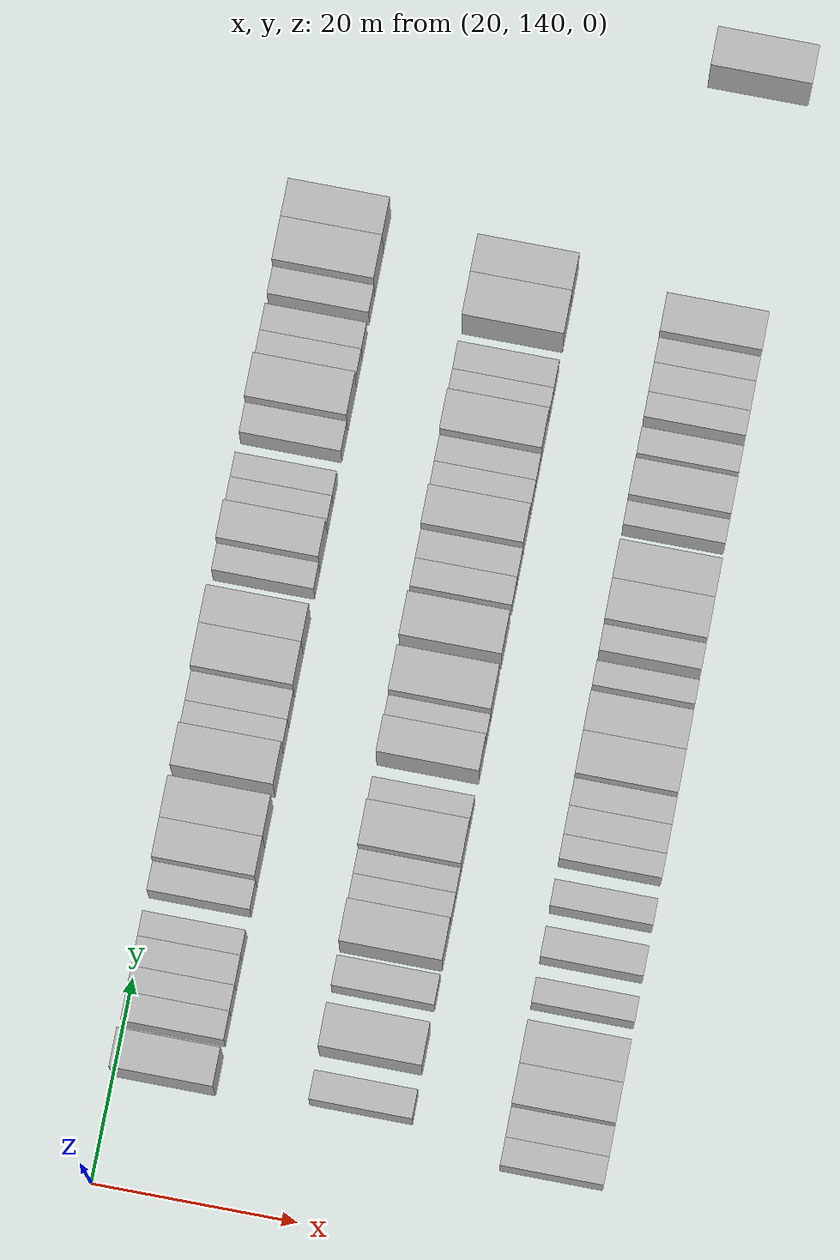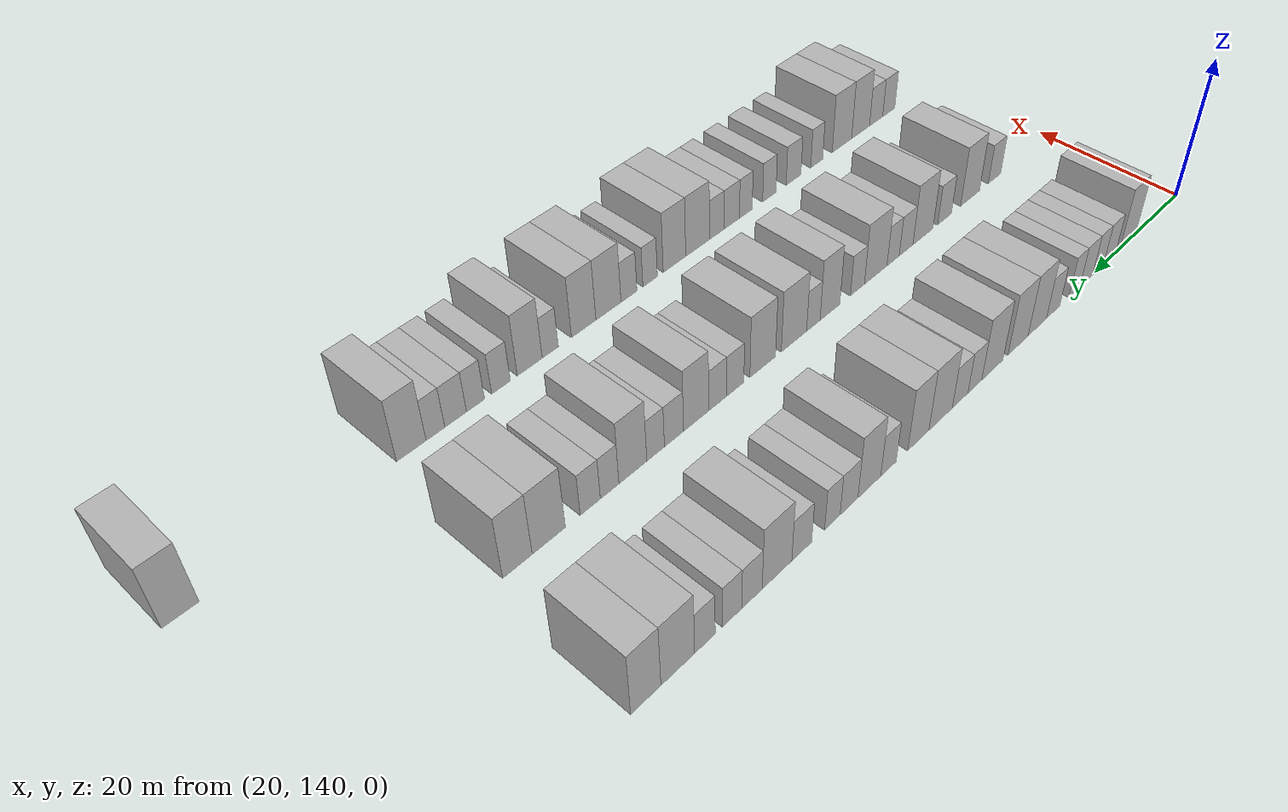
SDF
<sdf version="1.6">
 <world name="default">
  <model name="building_91">
   <static>1</static>
   <pose>25.0000 152.3295 0 0.000000 0.000000 0.000000</pose>
   <link name="link">
    <pose>0 0 4.50 0 0 0</pose>
    <collision name="collision"><geometry><box><size>10.0000 3.8072 9.0000</size></box></geometry></collision>
    <visual name="visual">
     <cast_shadows>0</cast_shadows>
     <geometry><box><size>10.0000 3.8072 9.0000</size></box></geometry>
     <material>
      <script>
       <uri>model://HANNAS_wall/materials/scripts</uri>
       <uri>model://HANNAS_wall/materials/textures</uri>
       <name>vrc/HANNAS_wall</name>
      </script>
     </material>
    </visual>
   </link>
  </model>
  <model name="building_92">
   <static>1</static>
   <pose>25.0000 156.6490 0 0.000000 0.000000 0.000000</pose>
   <link name="link">
    <pose>0 0 3.00 0 0 0</pose>
    <collision name="collision"><geometry><box><size>10.0000 2.8318 6.0000</size></box></geometry></collision>
    <visual name="visual">
     <cast_shadows>0</cast_shadows>
     <geometry><box><size>10.0000 2.8318 6.0000</size></box></geometry>
     <material>
      <script>
       <uri>model://HANNAS_wall/materials/scripts</uri>
       <uri>model://HANNAS_wall/materials/textures</uri>
       <name>vrc/HANNAS_wall</name>
      </script>
     </material>
    </visual>
   </link>
  </model>
  <model name="building_93">
   <static>1</static>
   <pose>25.0000 159.3207 0 0.000000 0.000000 0.000000</pose>
   <link name="link">
    <pose>0 0 3.00 0 0 0</pose>
    <collision name="collision"><geometry><box><size>10.0000 2.5117 6.0000</size></box></geometry></collision>
    <visual name="visual">
     <cast_shadows>0</cast_shadows>
     <geometry><box><size>10.0000 2.5117 6.0000</size></box></geometry>
     <material>
      <script>
       <uri>model://HANNAS_wall/materials/scripts</uri>
       <uri>model://HANNAS_wall/materials/textures</uri>
       <name>vrc/HANNAS_wall</name>
      </script>
     </material>
    </visual>
   </link>
  </model>
  <model name="building_94">
   <static>1</static>
   <pose>25.0000 162.0330 0 0.000000 0.000000 0.000000</pose>
   <link name="link">
    <pose>0 0 3.00 0 0 0</pose>
    <collision name="collision"><geometry><box><size>10.0000 2.9128 6.0000</size></box></geometry></collision>
    <visual name="visual">
     <cast_shadows>0</cast_shadows>
     <geometry><box><size>10.0000 2.9128 6.0000</size></box></geometry>
     <material>
      <script>
       <uri>model://HANNAS_wall/materials/scripts</uri>
       <uri>model://HANNAS_wall/materials/textures</uri>
       <name>vrc/HANNAS_wall</name>
      </script>
     </material>
    </visual>
   </link>
  </model>
  <model name="building_95">
   <static>1</static>
   <pose>25.0000 164.7156 0 0.000000 0.000000 0.000000</pose>
   <link name="link">
    <pose>0 0 3.00 0 0 0</pose>
    <collision name="collision"><geometry><box><size>10.0000 2.4525 6.0000</size></box></geometry></collision>
    <visual name="visual">
     <cast_shadows>0</cast_shadows>
     <geometry><box><size>10.0000 2.4525 6.0000</size></box></geometry>
     <material>
      <script>
       <uri>model://HANNAS_wall/materials/scripts</uri>
       <uri>model://HANNAS_wall/materials/textures</uri>
       <name>vrc/HANNAS_wall</name>
      </script>
     </material>
    </visual>
   </link>
  </model>
  <model name="building_96">
   <static>1</static>
   <pose>25.0000 169.3716 0 0.000000 0.000000 0.000000</pose>
   <link name="link">
    <pose>0 0 3.00 0 0 0</pose>
    <collision name="collision"><geometry><box><size>10.0000 2.8596 6.0000</size></box></geometry></collision>
    <visual name="visual">
     <cast_shadows>0</cast_shadows>
     <geometry><box><size>10.0000 2.8596 6.0000</size></box></geometry>
     <material>
      <script>
       <uri>model://HANNAS_wall/materials/scripts</uri>
       <uri>model://HANNAS_wall/materials/textures</uri>
       <name>vrc/HANNAS_wall</name>
      </script>
     </material>
    </visual>
   </link>
  </model>
  <model name="building_97">
   <static>1</static>
   <pose>25.0000 172.7425 0 0.000000 0.000000 0.000000</pose>
   <link name="link">
    <pose>0 0 4.50 0 0 0</pose>
    <collision name="collision"><geometry><box><size>10.0000 3.8822 9.0000</size></box></geometry></collision>
    <visual name="visual">
     <cast_shadows>0</cast_shadows>
     <geometry><box><size>10.0000 3.8822 9.0000</size></box></geometry>
     <material>
      <script>
       <uri>model://HANNAS_wall/materials/scripts</uri>
       <uri>model://HANNAS_wall/materials/textures</uri>
       <name>vrc/HANNAS_wall</name>
      </script>
     </material>
    </visual>
   </link>
  </model>
  <model name="building_98">
   <static>1</static>
   <pose>25.0000 176.7249 0 0.000000 0.000000 0.000000</pose>
   <link name="link">
    <pose>0 0 4.50 0 0 0</pose>
    <collision name="collision"><geometry><box><size>10.0000 4.0825 9.0000</size></box></geometry></collision>
    <visual name="visual">
     <cast_shadows>0</cast_shadows>
     <geometry><box><size>10.0000 4.0825 9.0000</size></box></geometry>
     <material>
      <script>
       <uri>model://HANNAS_wall/materials/scripts</uri>
       <uri>model://HANNAS_wall/materials/textures</uri>
       <name>vrc/HANNAS_wall</name>
      </script>
     </material>
    </visual>
   </link>
  </model>
  <model name="building_99">
   <static>1</static>
   <pose>25.0000 181.8592 0 0.000000 0.000000 0.000000</pose>
   <link name="link">
    <pose>0 0 4.50 0 0 0</pose>
    <collision name="collision"><geometry><box><size>10.0000 4.1862 9.0000</size></box></geometry></collision>
    <visual name="visual">
     <cast_shadows>0</cast_shadows>
     <geometry><box><size>10.0000 4.1862 9.0000</size></box></geometry>
     <material>
      <script>
       <uri>model://HANNAS_wall/materials/scripts</uri>
       <uri>model://HANNAS_wall/materials/textures</uri>
       <name>vrc/HANNAS_wall</name>
      </script>
     </material>
    </visual>
   </link>
  </model>
  <model name="building_100">
   <static>1</static>
   <pose>25.0000 185.2717 0 0.000000 0.000000 0.000000</pose>
   <link name="link">
    <pose>0 0 3.00 0 0 0</pose>
    <collision name="collision"><geometry><box><size>10.0000 2.6387 6.0000</size></box></geometry></collision>
    <visual name="visual">
     <cast_shadows>0</cast_shadows>
     <geometry><box><size>10.0000 2.6387 6.0000</size></box></geometry>
     <material>
      <script>
       <uri>model://HANNAS_wall/materials/scripts</uri>
       <uri>model://HANNAS_wall/materials/textures</uri>
       <name>vrc/HANNAS_wall</name>
      </script>
     </material>
    </visual>
   </link>
  </model>
  <model name="building_101">
   <static>1</static>
   <pose>25.0000 188.0558 0 0.000000 0.000000 0.000000</pose>
   <link name="link">
    <pose>0 0 3.00 0 0 0</pose>
    <collision name="collision"><geometry><box><size>10.0000 2.9296 6.0000</size></box></geometry></collision>
    <visual name="visual">
     <cast_shadows>0</cast_shadows>
     <geometry><box><size>10.0000 2.9296 6.0000</size></box></geometry>
     <material>
      <script>
       <uri>model://HANNAS_wall/materials/scripts</uri>
       <uri>model://HANNAS_wall/materials/textures</uri>
       <name>vrc/HANNAS_wall</name>
      </script>
     </material>
    </visual>
   </link>
  </model>
  <model name="building_102">
   <static>1</static>
   <pose>25.0000 191.6513 0 0.000000 0.000000 0.000000</pose>
   <link name="link">
    <pose>0 0 4.50 0 0 0</pose>
    <collision name="collision"><geometry><box><size>10.0000 4.2613 9.0000</size></box></geometry></collision>
    <visual name="visual">
     <cast_shadows>0</cast_shadows>
     <geometry><box><size>10.0000 4.2613 9.0000</size></box></geometry>
     <material>
      <script>
       <uri>model://HANNAS_wall/materials/scripts</uri>
       <uri>model://HANNAS_wall/materials/textures</uri>
       <name>vrc/HANNAS_wall</name>
      </script>
     </material>
    </visual>
   </link>
  </model>
  <model name="building_103">
   <static>1</static>
   <pose>25.0000 195.6443 0 0.000000 0.000000 0.000000</pose>
   <link name="link">
    <pose>0 0 4.50 0 0 0</pose>
    <collision name="collision"><geometry><box><size>10.0000 3.7249 9.0000</size></box></geometry></collision>
    <visual name="visual">
     <cast_shadows>0</cast_shadows>
     <geometry><box><size>10.0000 3.7249 9.0000</size></box></geometry>
     <material>
      <script>
       <uri>model://HANNAS_wall/materials/scripts</uri>
       <uri>model://HANNAS_wall/materials/textures</uri>
       <name>vrc/HANNAS_wall</name>
      </script>
     </material>
    </visual>
   </link>
  </model>
  <model name="building_104">
   <static>1</static>
   <pose>25.0000 200.8293 0 0.000000 0.000000 0.000000</pose>
   <link name="link">
    <pose>0 0 3.00 0 0 0</pose>
    <collision name="collision"><geometry><box><size>10.0000 2.6450 6.0000</size></box></geometry></collision>
    <visual name="visual">
     <cast_shadows>0</cast_shadows>
     <geometry><box><size>10.0000 2.6450 6.0000</size></box></geometry>
     <material>
      <script>
       <uri>model://HANNAS_wall/materials/scripts</uri>
       <uri>model://HANNAS_wall/materials/textures</uri>
       <name>vrc/HANNAS_wall</name>
      </script>
     </material>
    </visual>
   </link>
  </model>
  <model name="building_105">
   <static>1</static>
   <pose>25.0000 204.0341 0 0.000000 0.000000 0.000000</pose>
   <link name="link">
    <pose>0 0 4.50 0 0 0</pose>
    <collision name="collision"><geometry><box><size>10.0000 3.7646 9.0000</size></box></geometry></collision>
    <visual name="visual">
     <cast_shadows>0</cast_shadows>
     <geometry><box><size>10.0000 3.7646 9.0000</size></box></geometry>
     <material>
      <script>
       <uri>model://HANNAS_wall/materials/scripts</uri>
       <uri>model://HANNAS_wall/materials/textures</uri>
       <name>vrc/HANNAS_wall</name>
      </script>
     </material>
    </visual>
   </link>
  </model>
  <model name="building_106">
   <static>1</static>
   <pose>25.0000 207.3495 0 0.000000 0.000000 0.000000</pose>
   <link name="link">
    <pose>0 0 3.00 0 0 0</pose>
    <collision name="collision"><geometry><box><size>10.0000 2.8662 6.0000</size></box></geometry></collision>
    <visual name="visual">
     <cast_shadows>0</cast_shadows>
     <geometry><box><size>10.0000 2.8662 6.0000</size></box></geometry>
     <material>
      <script>
       <uri>model://HANNAS_wall/materials/scripts</uri>
       <uri>model://HANNAS_wall/materials/textures</uri>
       <name>vrc/HANNAS_wall</name>
      </script>
     </material>
    </visual>
   </link>
  </model>
  <model name="building_107">
   <static>1</static>
   <pose>25.0000 210.0011 0 0.000000 0.000000 0.000000</pose>
   <link name="link">
    <pose>0 0 3.00 0 0 0</pose>
    <collision name="collision"><geometry><box><size>10.0000 2.4372 6.0000</size></box></geometry></collision>
    <visual name="visual">
     <cast_shadows>0</cast_shadows>
     <geometry><box><size>10.0000 2.4372 6.0000</size></box></geometry>
     <material>
      <script>
       <uri>model://HANNAS_wall/materials/scripts</uri>
       <uri>model://HANNAS_wall/materials/textures</uri>
       <name>vrc/HANNAS_wall</name>
      </script>
     </material>
    </visual>
   </link>
  </model>
  <model name="building_108">
   <static>1</static>
   <pose>25.0000 214.7179 0 0.000000 0.000000 0.000000</pose>
   <link name="link">
    <pose>0 0 3.00 0 0 0</pose>
    <collision name="collision"><geometry><box><size>10.0000 2.9964 6.0000</size></box></geometry></collision>
    <visual name="visual">
     <cast_shadows>0</cast_shadows>
     <geometry><box><size>10.0000 2.9964 6.0000</size></box></geometry>
     <material>
      <script>
       <uri>model://HANNAS_wall/materials/scripts</uri>
       <uri>model://HANNAS_wall/materials/textures</uri>
       <name>vrc/HANNAS_wall</name>
      </script>
     </material>
    </visual>
   </link>
  </model>
  <model name="building_109">
   <static>1</static>
   <pose>25.0000 218.3905 0 0.000000 0.000000 0.000000</pose>
   <link name="link">
    <pose>0 0 4.50 0 0 0</pose>
    <collision name="collision"><geometry><box><size>10.0000 4.3490 9.0000</size></box></geometry></collision>
    <visual name="visual">
     <cast_shadows>0</cast_shadows>
     <geometry><box><size>10.0000 4.3490 9.0000</size></box></geometry>
     <material>
      <script>
       <uri>model://HANNAS_wall/materials/scripts</uri>
       <uri>model://HANNAS_wall/materials/textures</uri>
       <name>vrc/HANNAS_wall</name>
      </script>
     </material>
    </visual>
   </link>
  </model>
  <model name="building_110">
   <static>1</static>
   <pose>25.0000 222.0185 0 0.000000 0.000000 0.000000</pose>
   <link name="link">
    <pose>0 0 3.00 0 0 0</pose>
    <collision name="collision"><geometry><box><size>10.0000 2.9069 6.0000</size></box></geometry></collision>
    <visual name="visual">
     <cast_shadows>0</cast_shadows>
     <geometry><box><size>10.0000 2.9069 6.0000</size></box></geometry>
     <material>
      <script>
       <uri>model://HANNAS_wall/materials/scripts</uri>
       <uri>model://HANNAS_wall/materials/textures</uri>
       <name>vrc/HANNAS_wall</name>
      </script>
     </material>
    </visual>
   </link>
  </model>
  <model name="building_111">
   <static>1</static>
   <pose>25.0000 224.7996 0 0.000000 0.000000 0.000000</pose>
   <link name="link">
    <pose>0 0 3.00 0 0 0</pose>
    <collision name="collision"><geometry><box><size>10.0000 2.6555 6.0000</size></box></geometry></collision>
    <visual name="visual">
     <cast_shadows>0</cast_shadows>
     <geometry><box><size>10.0000 2.6555 6.0000</size></box></geometry>
     <material>
      <script>
       <uri>model://HANNAS_wall/materials/scripts</uri>
       <uri>model://HANNAS_wall/materials/textures</uri>
       <name>vrc/HANNAS_wall</name>
      </script>
     </material>
    </visual>
   </link>
  </model>
  <model name="building_112">
   <static>1</static>
   <pose>25.0000 228.5049 0 0.000000 0.000000 0.000000</pose>
   <link name="link">
    <pose>0 0 3.00 0 0 0</pose>
    <collision name="collision"><geometry><box><size>10.0000 2.7551 6.0000</size></box></geometry></collision>
    <visual name="visual">
     <cast_shadows>0</cast_shadows>
     <geometry><box><size>10.0000 2.7551 6.0000</size></box></geometry>
     <material>
      <script>
       <uri>model://HANNAS_wall/materials/scripts</uri>
       <uri>model://HANNAS_wall/materials/textures</uri>
       <name>vrc/HANNAS_wall</name>
      </script>
     </material>
    </visual>
   </link>
  </model>
  <model name="building_113">
   <static>1</static>
   <pose>25.0000 232.0656 0 0.000000 0.000000 0.000000</pose>
   <link name="link">
    <pose>0 0 4.50 0 0 0</pose>
    <collision name="collision"><geometry><box><size>10.0000 4.3662 9.0000</size></box></geometry></collision>
    <visual name="visual">
     <cast_shadows>0</cast_shadows>
     <geometry><box><size>10.0000 4.3662 9.0000</size></box></geometry>
     <material>
      <script>
       <uri>model://HANNAS_wall/materials/scripts</uri>
       <uri>model://HANNAS_wall/materials/textures</uri>
       <name>vrc/HANNAS_wall</name>
      </script>
     </material>
    </visual>
   </link>
  </model>
  <model name="building_114">
   <static>1</static>
   <pose>25.0000 236.1477 0 0.000000 0.000000 0.000000</pose>
   <link name="link">
    <pose>0 0 4.50 0 0 0</pose>
    <collision name="collision"><geometry><box><size>10.0000 3.7981 9.0000</size></box></geometry></collision>
    <visual name="visual">
     <cast_shadows>0</cast_shadows>
     <geometry><box><size>10.0000 3.7981 9.0000</size></box></geometry>
     <material>
      <script>
       <uri>model://HANNAS_wall/materials/scripts</uri>
       <uri>model://HANNAS_wall/materials/textures</uri>
       <name>vrc/HANNAS_wall</name>
      </script>
     </material>
    </visual>
   </link>
  </model>
  <model name="building_209">
   <static>1</static>
   <pose>44.0000 152.6829 0 0.000000 0.000000 0.000000</pose>
   <link name="link">
    <pose>0 0 3.00 0 0 0</pose>
    <collision name="collision"><geometry><box><size>10.0000 2.8426 6.0000</size></box></geometry></collision>
    <visual name="visual">
     <cast_shadows>0</cast_shadows>
     <geometry><box><size>10.0000 2.8426 6.0000</size></box></geometry>
     <material>
      <script>
       <uri>model://HANNAS_wall/materials/scripts</uri>
       <uri>model://HANNAS_wall/materials/textures</uri>
       <name>vrc/HANNAS_wall</name>
      </script>
     </material>
    </visual>
   </link>
  </model>
  <model name="building_210">
   <static>1</static>
   <pose>44.0000 158.2100 0 0.000000 0.000000 0.000000</pose>
   <link name="link">
    <pose>0 0 4.50 0 0 0</pose>
    <collision name="collision"><geometry><box><size>10.0000 4.2116 9.0000</size></box></geometry></collision>
    <visual name="visual">
     <cast_shadows>0</cast_shadows>
     <geometry><box><size>10.0000 4.2116 9.0000</size></box></geometry>
     <material>
      <script>
       <uri>model://HANNAS_wall/materials/scripts</uri>
       <uri>model://HANNAS_wall/materials/textures</uri>
       <name>vrc/HANNAS_wall</name>
      </script>
     </material>
    </visual>
   </link>
  </model>
  <model name="building_211">
   <static>1</static>
   <pose>44.0000 163.7958 0 0.000000 0.000000 0.000000</pose>
   <link name="link">
    <pose>0 0 3.00 0 0 0</pose>
    <collision name="collision"><geometry><box><size>10.0000 2.9600 6.0000</size></box></geometry></collision>
    <visual name="visual">
     <cast_shadows>0</cast_shadows>
     <geometry><box><size>10.0000 2.9600 6.0000</size></box></geometry>
     <material>
      <script>
       <uri>model://HANNAS_wall/materials/scripts</uri>
       <uri>model://HANNAS_wall/materials/textures</uri>
       <name>vrc/HANNAS_wall</name>
      </script>
     </material>
    </visual>
   </link>
  </model>
  <model name="building_212">
   <static>1</static>
   <pose>44.0000 168.3612 0 0.000000 0.000000 0.000000</pose>
   <link name="link">
    <pose>0 0 4.50 0 0 0</pose>
    <collision name="collision"><geometry><box><size>10.0000 4.1707 9.0000</size></box></geometry></collision>
    <visual name="visual">
     <cast_shadows>0</cast_shadows>
     <geometry><box><size>10.0000 4.1707 9.0000</size></box></geometry>
     <material>
      <script>
       <uri>model://HANNAS_wall/materials/scripts</uri>
       <uri>model://HANNAS_wall/materials/textures</uri>
       <name>vrc/HANNAS_wall</name>
      </script>
     </material>
    </visual>
   </link>
  </model>
  <model name="building_213">
   <static>1</static>
   <pose>44.0000 171.8461 0 0.000000 0.000000 0.000000</pose>
   <link name="link">
    <pose>0 0 3.00 0 0 0</pose>
    <collision name="collision"><geometry><box><size>10.0000 2.7991 6.0000</size></box></geometry></collision>
    <visual name="visual">
     <cast_shadows>0</cast_shadows>
     <geometry><box><size>10.0000 2.7991 6.0000</size></box></geometry>
     <material>
      <script>
       <uri>model://HANNAS_wall/materials/scripts</uri>
       <uri>model://HANNAS_wall/materials/textures</uri>
       <name>vrc/HANNAS_wall</name>
      </script>
     </material>
    </visual>
   </link>
  </model>
  <model name="building_214">
   <static>1</static>
   <pose>44.0000 174.4668 0 0.000000 0.000000 0.000000</pose>
   <link name="link">
    <pose>0 0 3.00 0 0 0</pose>
    <collision name="collision"><geometry><box><size>10.0000 2.4423 6.0000</size></box></geometry></collision>
    <visual name="visual">
     <cast_shadows>0</cast_shadows>
     <geometry><box><size>10.0000 2.4423 6.0000</size></box></geometry>
     <material>
      <script>
       <uri>model://HANNAS_wall/materials/scripts</uri>
       <uri>model://HANNAS_wall/materials/textures</uri>
       <name>vrc/HANNAS_wall</name>
      </script>
     </material>
    </visual>
   </link>
  </model>
  <model name="building_215">
   <static>1</static>
   <pose>44.0000 177.8982 0 0.000000 0.000000 0.000000</pose>
   <link name="link">
    <pose>0 0 4.50 0 0 0</pose>
    <collision name="collision"><geometry><box><size>10.0000 4.4206 9.0000</size></box></geometry></collision>
    <visual name="visual">
     <cast_shadows>0</cast_shadows>
     <geometry><box><size>10.0000 4.4206 9.0000</size></box></geometry>
     <material>
      <script>
       <uri>model://HANNAS_wall/materials/scripts</uri>
       <uri>model://HANNAS_wall/materials/textures</uri>
       <name>vrc/HANNAS_wall</name>
      </script>
     </material>
    </visual>
   </link>
  </model>
  <model name="building_216">
   <static>1</static>
   <pose>44.0000 181.4273 0 0.000000 0.000000 0.000000</pose>
   <link name="link">
    <pose>0 0 3.00 0 0 0</pose>
    <collision name="collision"><geometry><box><size>10.0000 2.6375 6.0000</size></box></geometry></collision>
    <visual name="visual">
     <cast_shadows>0</cast_shadows>
     <geometry><box><size>10.0000 2.6375 6.0000</size></box></geometry>
     <material>
      <script>
       <uri>model://HANNAS_wall/materials/scripts</uri>
       <uri>model://HANNAS_wall/materials/textures</uri>
       <name>vrc/HANNAS_wall</name>
      </script>
     </material>
    </visual>
   </link>
  </model>
  <model name="building_217">
   <static>1</static>
   <pose>44.0000 186.5634 0 0.000000 0.000000 0.000000</pose>
   <link name="link">
    <pose>0 0 4.50 0 0 0</pose>
    <collision name="collision"><geometry><box><size>10.0000 3.6347 9.0000</size></box></geometry></collision>
    <visual name="visual">
     <cast_shadows>0</cast_shadows>
     <geometry><box><size>10.0000 3.6347 9.0000</size></box></geometry>
     <material>
      <script>
       <uri>model://HANNAS_wall/materials/scripts</uri>
       <uri>model://HANNAS_wall/materials/textures</uri>
       <name>vrc/HANNAS_wall</name>
      </script>
     </material>
    </visual>
   </link>
  </model>
  <model name="building_218">
   <static>1</static>
   <pose>44.0000 189.5878 0 0.000000 0.000000 0.000000</pose>
   <link name="link">
    <pose>0 0 3.00 0 0 0</pose>
    <collision name="collision"><geometry><box><size>10.0000 2.4140 6.0000</size></box></geometry></collision>
    <visual name="visual">
     <cast_shadows>0</cast_shadows>
     <geometry><box><size>10.0000 2.4140 6.0000</size></box></geometry>
     <material>
      <script>
       <uri>model://HANNAS_wall/materials/scripts</uri>
       <uri>model://HANNAS_wall/materials/textures</uri>
       <name>vrc/HANNAS_wall</name>
      </script>
     </material>
    </visual>
   </link>
  </model>
  <model name="building_219">
   <static>1</static>
   <pose>44.0000 193.0128 0 0.000000 0.000000 0.000000</pose>
   <link name="link">
    <pose>0 0 4.50 0 0 0</pose>
    <collision name="collision"><geometry><box><size>10.0000 4.4360 9.0000</size></box></geometry></collision>
    <visual name="visual">
     <cast_shadows>0</cast_shadows>
     <geometry><box><size>10.0000 4.4360 9.0000</size></box></geometry>
     <material>
      <script>
       <uri>model://HANNAS_wall/materials/scripts</uri>
       <uri>model://HANNAS_wall/materials/textures</uri>
       <name>vrc/HANNAS_wall</name>
      </script>
     </material>
    </visual>
   </link>
  </model>
  <model name="building_220">
   <static>1</static>
   <pose>44.0000 198.3904 0 0.000000 0.000000 0.000000</pose>
   <link name="link">
    <pose>0 0 4.50 0 0 0</pose>
    <collision name="collision"><geometry><box><size>10.0000 4.3191 9.0000</size></box></geometry></collision>
    <visual name="visual">
     <cast_shadows>0</cast_shadows>
     <geometry><box><size>10.0000 4.3191 9.0000</size></box></geometry>
     <material>
      <script>
       <uri>model://HANNAS_wall/materials/scripts</uri>
       <uri>model://HANNAS_wall/materials/textures</uri>
       <name>vrc/HANNAS_wall</name>
      </script>
     </material>
    </visual>
   </link>
  </model>
  <model name="building_221">
   <static>1</static>
   <pose>44.0000 202.9556 0 0.000000 0.000000 0.000000</pose>
   <link name="link">
    <pose>0 0 3.00 0 0 0</pose>
    <collision name="collision"><geometry><box><size>10.0000 2.8114 6.0000</size></box></geometry></collision>
    <visual name="visual">
     <cast_shadows>0</cast_shadows>
     <geometry><box><size>10.0000 2.8114 6.0000</size></box></geometry>
     <material>
      <script>
       <uri>model://HANNAS_wall/materials/scripts</uri>
       <uri>model://HANNAS_wall/materials/textures</uri>
       <name>vrc/HANNAS_wall</name>
      </script>
     </material>
    </visual>
   </link>
  </model>
  <model name="building_222">
   <static>1</static>
   <pose>44.0000 205.7918 0 0.000000 0.000000 0.000000</pose>
   <link name="link">
    <pose>0 0 3.00 0 0 0</pose>
    <collision name="collision"><geometry><box><size>10.0000 2.8610 6.0000</size></box></geometry></collision>
    <visual name="visual">
     <cast_shadows>0</cast_shadows>
     <geometry><box><size>10.0000 2.8610 6.0000</size></box></geometry>
     <material>
      <script>
       <uri>model://HANNAS_wall/materials/scripts</uri>
       <uri>model://HANNAS_wall/materials/textures</uri>
       <name>vrc/HANNAS_wall</name>
      </script>
     </material>
    </visual>
   </link>
  </model>
  <model name="building_223">
   <static>1</static>
   <pose>44.0000 209.1647 0 0.000000 0.000000 0.000000</pose>
   <link name="link">
    <pose>0 0 4.50 0 0 0</pose>
    <collision name="collision"><geometry><box><size>10.0000 3.8848 9.0000</size></box></geometry></collision>
    <visual name="visual">
     <cast_shadows>0</cast_shadows>
     <geometry><box><size>10.0000 3.8848 9.0000</size></box></geometry>
     <material>
      <script>
       <uri>model://HANNAS_wall/materials/scripts</uri>
       <uri>model://HANNAS_wall/materials/textures</uri>
       <name>vrc/HANNAS_wall</name>
      </script>
     </material>
    </visual>
   </link>
  </model>
  <model name="building_224">
   <static>1</static>
   <pose>44.0000 212.5561 0 0.000000 0.000000 0.000000</pose>
   <link name="link">
    <pose>0 0 3.00 0 0 0</pose>
    <collision name="collision"><geometry><box><size>10.0000 2.8980 6.0000</size></box></geometry></collision>
    <visual name="visual">
     <cast_shadows>0</cast_shadows>
     <geometry><box><size>10.0000 2.8980 6.0000</size></box></geometry>
     <material>
      <script>
       <uri>model://HANNAS_wall/materials/scripts</uri>
       <uri>model://HANNAS_wall/materials/textures</uri>
       <name>vrc/HANNAS_wall</name>
      </script>
     </material>
    </visual>
   </link>
  </model>
  <model name="building_225">
   <static>1</static>
   <pose>44.0000 215.3100 0 0.000000 0.000000 0.000000</pose>
   <link name="link">
    <pose>0 0 3.00 0 0 0</pose>
    <collision name="collision"><geometry><box><size>10.0000 2.6098 6.0000</size></box></geometry></collision>
    <visual name="visual">
     <cast_shadows>0</cast_shadows>
     <geometry><box><size>10.0000 2.6098 6.0000</size></box></geometry>
     <material>
      <script>
       <uri>model://HANNAS_wall/materials/scripts</uri>
       <uri>model://HANNAS_wall/materials/textures</uri>
       <name>vrc/HANNAS_wall</name>
      </script>
     </material>
    </visual>
   </link>
  </model>
  <model name="building_226">
   <static>1</static>
   <pose>44.0000 218.6247 0 0.000000 0.000000 0.000000</pose>
   <link name="link">
    <pose>0 0 4.50 0 0 0</pose>
    <collision name="collision"><geometry><box><size>10.0000 4.0196 9.0000</size></box></geometry></collision>
    <visual name="visual">
     <cast_shadows>0</cast_shadows>
     <geometry><box><size>10.0000 4.0196 9.0000</size></box></geometry>
     <material>
      <script>
       <uri>model://HANNAS_wall/materials/scripts</uri>
       <uri>model://HANNAS_wall/materials/textures</uri>
       <name>vrc/HANNAS_wall</name>
      </script>
     </material>
    </visual>
   </link>
  </model>
  <model name="building_227">
   <static>1</static>
   <pose>44.0000 221.9360 0 0.000000 0.000000 0.000000</pose>
   <link name="link">
    <pose>0 0 3.00 0 0 0</pose>
    <collision name="collision"><geometry><box><size>10.0000 2.6030 6.0000</size></box></geometry></collision>
    <visual name="visual">
     <cast_shadows>0</cast_shadows>
     <geometry><box><size>10.0000 2.6030 6.0000</size></box></geometry>
     <material>
      <script>
       <uri>model://HANNAS_wall/materials/scripts</uri>
       <uri>model://HANNAS_wall/materials/textures</uri>
       <name>vrc/HANNAS_wall</name>
      </script>
     </material>
    </visual>
   </link>
  </model>
  <model name="building_228">
   <static>1</static>
   <pose>44.0000 224.6247 0 0.000000 0.000000 0.000000</pose>
   <link name="link">
    <pose>0 0 3.00 0 0 0</pose>
    <collision name="collision"><geometry><box><size>10.0000 2.7744 6.0000</size></box></geometry></collision>
    <visual name="visual">
     <cast_shadows>0</cast_shadows>
     <geometry><box><size>10.0000 2.7744 6.0000</size></box></geometry>
     <material>
      <script>
       <uri>model://HANNAS_wall/materials/scripts</uri>
       <uri>model://HANNAS_wall/materials/textures</uri>
       <name>vrc/HANNAS_wall</name>
      </script>
     </material>
    </visual>
   </link>
  </model>
  <model name="building_229">
   <static>1</static>
   <pose>44.0000 230.1798 0 0.000000 0.000000 0.000000</pose>
   <link name="link">
    <pose>0 0 4.50 0 0 0</pose>
    <collision name="collision"><geometry><box><size>10.0000 4.3357 9.0000</size></box></geometry></collision>
    <visual name="visual">
     <cast_shadows>0</cast_shadows>
     <geometry><box><size>10.0000 4.3357 9.0000</size></box></geometry>
     <material>
      <script>
       <uri>model://HANNAS_wall/materials/scripts</uri>
       <uri>model://HANNAS_wall/materials/textures</uri>
       <name>vrc/HANNAS_wall</name>
      </script>
     </material>
    </visual>
   </link>
  </model>
  <model name="building_230">
   <static>1</static>
   <pose>44.0000 234.2234 0 0.000000 0.000000 0.000000</pose>
   <link name="link">
    <pose>0 0 4.50 0 0 0</pose>
    <collision name="collision"><geometry><box><size>10.0000 3.7515 9.0000</size></box></geometry></collision>
    <visual name="visual">
     <cast_shadows>0</cast_shadows>
     <geometry><box><size>10.0000 3.7515 9.0000</size></box></geometry>
     <material>
      <script>
       <uri>model://HANNAS_wall/materials/scripts</uri>
       <uri>model://HANNAS_wall/materials/textures</uri>
       <name>vrc/HANNAS_wall</name>
      </script>
     </material>
    </visual>
   </link>
  </model>
  <model name="building_328">
   <static>1</static>
   <pose>63.0000 149.8870 0 0.000000 0.000000 0.000000</pose>
   <link name="link">
    <pose>0 0 3.00 0 0 0</pose>
    <collision name="collision"><geometry><box><size>10.0000 2.7508 6.0000</size></box></geometry></collision>
    <visual name="visual">
     <cast_shadows>0</cast_shadows>
     <geometry><box><size>10.0000 2.7508 6.0000</size></box></geometry>
     <material>
      <script>
       <uri>model://HANNAS_wall/materials/scripts</uri>
       <uri>model://HANNAS_wall/materials/textures</uri>
       <name>vrc/HANNAS_wall</name>
      </script>
     </material>
    </visual>
   </link>
  </model>
  <model name="building_329">
   <static>1</static>
   <pose>63.0000 152.7361 0 0.000000 0.000000 0.000000</pose>
   <link name="link">
    <pose>0 0 3.00 0 0 0</pose>
    <collision name="collision"><geometry><box><size>10.0000 2.9475 6.0000</size></box></geometry></collision>
    <visual name="visual">
     <cast_shadows>0</cast_shadows>
     <geometry><box><size>10.0000 2.9475 6.0000</size></box></geometry>
     <material>
      <script>
       <uri>model://HANNAS_wall/materials/scripts</uri>
       <uri>model://HANNAS_wall/materials/textures</uri>
       <name>vrc/HANNAS_wall</name>
      </script>
     </material>
    </visual>
   </link>
  </model>
  <model name="building_330">
   <static>1</static>
   <pose>63.0000 156.1705 0 0.000000 0.000000 0.000000</pose>
   <link name="link">
    <pose>0 0 4.50 0 0 0</pose>
    <collision name="collision"><geometry><box><size>10.0000 3.9213 9.0000</size></box></geometry></collision>
    <visual name="visual">
     <cast_shadows>0</cast_shadows>
     <geometry><box><size>10.0000 3.9213 9.0000</size></box></geometry>
     <material>
      <script>
       <uri>model://HANNAS_wall/materials/scripts</uri>
       <uri>model://HANNAS_wall/materials/textures</uri>
       <name>vrc/HANNAS_wall</name>
      </script>
     </material>
    </visual>
   </link>
  </model>
  <model name="building_331">
   <static>1</static>
   <pose>63.0000 160.2135 0 0.000000 0.000000 0.000000</pose>
   <link name="link">
    <pose>0 0 4.50 0 0 0</pose>
    <collision name="collision"><geometry><box><size>10.0000 4.1647 9.0000</size></box></geometry></collision>
    <visual name="visual">
     <cast_shadows>0</cast_shadows>
     <geometry><box><size>10.0000 4.1647 9.0000</size></box></geometry>
     <material>
      <script>
       <uri>model://HANNAS_wall/materials/scripts</uri>
       <uri>model://HANNAS_wall/materials/textures</uri>
       <name>vrc/HANNAS_wall</name>
      </script>
     </material>
    </visual>
   </link>
  </model>
  <model name="building_332">
   <static>1</static>
   <pose>63.0000 165.5317 0 0.000000 0.000000 0.000000</pose>
   <link name="link">
    <pose>0 0 3.00 0 0 0</pose>
    <collision name="collision"><geometry><box><size>10.0000 2.4719 6.0000</size></box></geometry></collision>
    <visual name="visual">
     <cast_shadows>0</cast_shadows>
     <geometry><box><size>10.0000 2.4719 6.0000</size></box></geometry>
     <material>
      <script>
       <uri>model://HANNAS_wall/materials/scripts</uri>
       <uri>model://HANNAS_wall/materials/textures</uri>
       <name>vrc/HANNAS_wall</name>
      </script>
     </material>
    </visual>
   </link>
  </model>
  <model name="building_333">
   <static>1</static>
   <pose>63.0000 170.2536 0 0.000000 0.000000 0.000000</pose>
   <link name="link">
    <pose>0 0 3.00 0 0 0</pose>
    <collision name="collision"><geometry><box><size>10.0000 2.9719 6.0000</size></box></geometry></collision>
    <visual name="visual">
     <cast_shadows>0</cast_shadows>
     <geometry><box><size>10.0000 2.9719 6.0000</size></box></geometry>
     <material>
      <script>
       <uri>model://HANNAS_wall/materials/scripts</uri>
       <uri>model://HANNAS_wall/materials/textures</uri>
       <name>vrc/HANNAS_wall</name>
      </script>
     </material>
    </visual>
   </link>
  </model>
  <model name="building_334">
   <static>1</static>
   <pose>63.0000 175.0394 0 0.000000 0.000000 0.000000</pose>
   <link name="link">
    <pose>0 0 3.00 0 0 0</pose>
    <collision name="collision"><geometry><box><size>10.0000 2.5996 6.0000</size></box></geometry></collision>
    <visual name="visual">
     <cast_shadows>0</cast_shadows>
     <geometry><box><size>10.0000 2.5996 6.0000</size></box></geometry>
     <material>
      <script>
       <uri>model://HANNAS_wall/materials/scripts</uri>
       <uri>model://HANNAS_wall/materials/textures</uri>
       <name>vrc/HANNAS_wall</name>
      </script>
     </material>
    </visual>
   </link>
  </model>
  <model name="building_335">
   <static>1</static>
   <pose>63.0000 179.5464 0 0.000000 0.000000 0.000000</pose>
   <link name="link">
    <pose>0 0 3.00 0 0 0</pose>
    <collision name="collision"><geometry><box><size>10.0000 2.4144 6.0000</size></box></geometry></collision>
    <visual name="visual">
     <cast_shadows>0</cast_shadows>
     <geometry><box><size>10.0000 2.4144 6.0000</size></box></geometry>
     <material>
      <script>
       <uri>model://HANNAS_wall/materials/scripts</uri>
       <uri>model://HANNAS_wall/materials/textures</uri>
       <name>vrc/HANNAS_wall</name>
      </script>
     </material>
    </visual>
   </link>
  </model>
  <model name="building_336">
   <static>1</static>
   <pose>63.0000 182.1673 0 0.000000 0.000000 0.000000</pose>
   <link name="link">
    <pose>0 0 3.00 0 0 0</pose>
    <collision name="collision"><geometry><box><size>10.0000 2.8275 6.0000</size></box></geometry></collision>
    <visual name="visual">
     <cast_shadows>0</cast_shadows>
     <geometry><box><size>10.0000 2.8275 6.0000</size></box></geometry>
     <material>
      <script>
       <uri>model://HANNAS_wall/materials/scripts</uri>
       <uri>model://HANNAS_wall/materials/textures</uri>
       <name>vrc/HANNAS_wall</name>
      </script>
     </material>
    </visual>
   </link>
  </model>
  <model name="building_337">
   <static>1</static>
   <pose>63.0000 184.9350 0 0.000000 0.000000 0.000000</pose>
   <link name="link">
    <pose>0 0 3.00 0 0 0</pose>
    <collision name="collision"><geometry><box><size>10.0000 2.7078 6.0000</size></box></geometry></collision>
    <visual name="visual">
     <cast_shadows>0</cast_shadows>
     <geometry><box><size>10.0000 2.7078 6.0000</size></box></geometry>
     <material>
      <script>
       <uri>model://HANNAS_wall/materials/scripts</uri>
       <uri>model://HANNAS_wall/materials/textures</uri>
       <name>vrc/HANNAS_wall</name>
      </script>
     </material>
    </visual>
   </link>
  </model>
  <model name="building_338">
   <static>1</static>
   <pose>63.0000 188.4041 0 0.000000 0.000000 0.000000</pose>
   <link name="link">
    <pose>0 0 4.50 0 0 0</pose>
    <collision name="collision"><geometry><box><size>10.0000 4.2304 9.0000</size></box></geometry></collision>
    <visual name="visual">
     <cast_shadows>0</cast_shadows>
     <geometry><box><size>10.0000 4.2304 9.0000</size></box></geometry>
     <material>
      <script>
       <uri>model://HANNAS_wall/materials/scripts</uri>
       <uri>model://HANNAS_wall/materials/textures</uri>
       <name>vrc/HANNAS_wall</name>
      </script>
     </material>
    </visual>
   </link>
  </model>
  <model name="building_339">
   <static>1</static>
   <pose>63.0000 192.4694 0 0.000000 0.000000 0.000000</pose>
   <link name="link">
    <pose>0 0 4.50 0 0 0</pose>
    <collision name="collision"><geometry><box><size>10.0000 3.9002 9.0000</size></box></geometry></collision>
    <visual name="visual">
     <cast_shadows>0</cast_shadows>
     <geometry><box><size>10.0000 3.9002 9.0000</size></box></geometry>
     <material>
      <script>
       <uri>model://HANNAS_wall/materials/scripts</uri>
       <uri>model://HANNAS_wall/materials/textures</uri>
       <name>vrc/HANNAS_wall</name>
      </script>
     </material>
    </visual>
   </link>
  </model>
  <model name="building_340">
   <static>1</static>
   <pose>63.0000 196.6373 0 0.000000 0.000000 0.000000</pose>
   <link name="link">
    <pose>0 0 3.00 0 0 0</pose>
    <collision name="collision"><geometry><box><size>10.0000 2.4356 6.0000</size></box></geometry></collision>
    <visual name="visual">
     <cast_shadows>0</cast_shadows>
     <geometry><box><size>10.0000 2.4356 6.0000</size></box></geometry>
     <material>
      <script>
       <uri>model://HANNAS_wall/materials/scripts</uri>
       <uri>model://HANNAS_wall/materials/textures</uri>
       <name>vrc/HANNAS_wall</name>
      </script>
     </material>
    </visual>
   </link>
  </model>
  <model name="building_341">
   <static>1</static>
   <pose>63.0000 200.1574 0 0.000000 0.000000 0.000000</pose>
   <link name="link">
    <pose>0 0 3.00 0 0 0</pose>
    <collision name="collision"><geometry><box><size>10.0000 2.6046 6.0000</size></box></geometry></collision>
    <visual name="visual">
     <cast_shadows>0</cast_shadows>
     <geometry><box><size>10.0000 2.6046 6.0000</size></box></geometry>
     <material>
      <script>
       <uri>model://HANNAS_wall/materials/scripts</uri>
       <uri>model://HANNAS_wall/materials/textures</uri>
       <name>vrc/HANNAS_wall</name>
      </script>
     </material>
    </visual>
   </link>
  </model>
  <model name="building_342">
   <static>1</static>
   <pose>63.0000 203.4817 0 0.000000 0.000000 0.000000</pose>
   <link name="link">
    <pose>0 0 4.50 0 0 0</pose>
    <collision name="collision"><geometry><box><size>10.0000 4.0439 9.0000</size></box></geometry></collision>
    <visual name="visual">
     <cast_shadows>0</cast_shadows>
     <geometry><box><size>10.0000 4.0439 9.0000</size></box></geometry>
     <material>
      <script>
       <uri>model://HANNAS_wall/materials/scripts</uri>
       <uri>model://HANNAS_wall/materials/textures</uri>
       <name>vrc/HANNAS_wall</name>
      </script>
     </material>
    </visual>
   </link>
  </model>
  <model name="building_343">
   <static>1</static>
   <pose>63.0000 207.4179 0 0.000000 0.000000 0.000000</pose>
   <link name="link">
    <pose>0 0 4.50 0 0 0</pose>
    <collision name="collision"><geometry><box><size>10.0000 3.8285 9.0000</size></box></geometry></collision>
    <visual name="visual">
     <cast_shadows>0</cast_shadows>
     <geometry><box><size>10.0000 3.8285 9.0000</size></box></geometry>
     <material>
      <script>
       <uri>model://HANNAS_wall/materials/scripts</uri>
       <uri>model://HANNAS_wall/materials/textures</uri>
       <name>vrc/HANNAS_wall</name>
      </script>
     </material>
    </visual>
   </link>
  </model>
  <model name="building_344">
   <static>1</static>
   <pose>63.0000 212.5390 0 0.000000 0.000000 0.000000</pose>
   <link name="link">
    <pose>0 0 3.00 0 0 0</pose>
    <collision name="collision"><geometry><box><size>10.0000 2.4137 6.0000</size></box></geometry></collision>
    <visual name="visual">
     <cast_shadows>0</cast_shadows>
     <geometry><box><size>10.0000 2.4137 6.0000</size></box></geometry>
     <material>
      <script>
       <uri>model://HANNAS_wall/materials/scripts</uri>
       <uri>model://HANNAS_wall/materials/textures</uri>
       <name>vrc/HANNAS_wall</name>
      </script>
     </material>
    </visual>
   </link>
  </model>
  <model name="building_345">
   <static>1</static>
   <pose>63.0000 215.5827 0 0.000000 0.000000 0.000000</pose>
   <link name="link">
    <pose>0 0 4.50 0 0 0</pose>
    <collision name="collision"><geometry><box><size>10.0000 3.6737 9.0000</size></box></geometry></collision>
    <visual name="visual">
     <cast_shadows>0</cast_shadows>
     <geometry><box><size>10.0000 3.6737 9.0000</size></box></geometry>
     <material>
      <script>
       <uri>model://HANNAS_wall/materials/scripts</uri>
       <uri>model://HANNAS_wall/materials/textures</uri>
       <name>vrc/HANNAS_wall</name>
      </script>
     </material>
    </visual>
   </link>
  </model>
  <model name="building_346">
   <static>1</static>
   <pose>63.0000 219.7565 0 0.000000 0.000000 0.000000</pose>
   <link name="link">
    <pose>0 0 3.00 0 0 0</pose>
    <collision name="collision"><geometry><box><size>10.0000 2.6740 6.0000</size></box></geometry></collision>
    <visual name="visual">
     <cast_shadows>0</cast_shadows>
     <geometry><box><size>10.0000 2.6740 6.0000</size></box></geometry>
     <material>
      <script>
       <uri>model://HANNAS_wall/materials/scripts</uri>
       <uri>model://HANNAS_wall/materials/textures</uri>
       <name>vrc/HANNAS_wall</name>
      </script>
     </material>
    </visual>
   </link>
  </model>
  <model name="building_347">
   <static>1</static>
   <pose>63.0000 223.3455 0 0.000000 0.000000 0.000000</pose>
   <link name="link">
    <pose>0 0 3.00 0 0 0</pose>
    <collision name="collision"><geometry><box><size>10.0000 2.5039 6.0000</size></box></geometry></collision>
    <visual name="visual">
     <cast_shadows>0</cast_shadows>
     <geometry><box><size>10.0000 2.5039 6.0000</size></box></geometry>
     <material>
      <script>
       <uri>model://HANNAS_wall/materials/scripts</uri>
       <uri>model://HANNAS_wall/materials/textures</uri>
       <name>vrc/HANNAS_wall</name>
      </script>
     </material>
    </visual>
   </link>
  </model>
  <model name="building_348">
   <static>1</static>
   <pose>63.0000 226.0715 0 0.000000 0.000000 0.000000</pose>
   <link name="link">
    <pose>0 0 3.00 0 0 0</pose>
    <collision name="collision"><geometry><box><size>10.0000 2.9482 6.0000</size></box></geometry></collision>
    <visual name="visual">
     <cast_shadows>0</cast_shadows>
     <geometry><box><size>10.0000 2.9482 6.0000</size></box></geometry>
     <material>
      <script>
       <uri>model://HANNAS_wall/materials/scripts</uri>
       <uri>model://HANNAS_wall/materials/textures</uri>
       <name>vrc/HANNAS_wall</name>
      </script>
     </material>
    </visual>
   </link>
  </model>
  <model name="building_349">
   <static>1</static>
   <pose>63.0000 228.7877 0 0.000000 0.000000 0.000000</pose>
   <link name="link">
    <pose>0 0 3.00 0 0 0</pose>
    <collision name="collision"><geometry><box><size>10.0000 2.4841 6.0000</size></box></geometry></collision>
    <visual name="visual">
     <cast_shadows>0</cast_shadows>
     <geometry><box><size>10.0000 2.4841 6.0000</size></box></geometry>
     <material>
      <script>
       <uri>model://HANNAS_wall/materials/scripts</uri>
       <uri>model://HANNAS_wall/materials/textures</uri>
       <name>vrc/HANNAS_wall</name>
      </script>
     </material>
    </visual>
   </link>
  </model>
  <model name="building_350">
   <static>1</static>
   <pose>63.0000 231.9544 0 0.000000 0.000000 0.000000</pose>
   <link name="link">
    <pose>0 0 4.50 0 0 0</pose>
    <collision name="collision"><geometry><box><size>10.0000 3.8493 9.0000</size></box></geometry></collision>
    <visual name="visual">
     <cast_shadows>0</cast_shadows>
     <geometry><box><size>10.0000 3.8493 9.0000</size></box></geometry>
     <material>
      <script>
       <uri>model://HANNAS_wall/materials/scripts</uri>
       <uri>model://HANNAS_wall/materials/textures</uri>
       <name>vrc/HANNAS_wall</name>
      </script>
     </material>
    </visual>
   </link>
  </model>
  <model name="building_351">
   <static>1</static>
   <pose>63.0000 258.7667 0 0.000000 0.000000 0.000000</pose>
   <link name="link">
    <pose>0 0 4.50 0 0 0</pose>
    <collision name="collision"><geometry><box><size>10.0000 3.9251 9.0000</size></box></geometry></collision>
    <visual name="visual">
     <cast_shadows>0</cast_shadows>
     <geometry><box><size>10.0000 3.9251 9.0000</size></box></geometry>
     <material>
      <script>
       <uri>model://HANNAS_wall/materials/scripts</uri>
       <uri>model://HANNAS_wall/materials/textures</uri>
       <name>vrc/HANNAS_wall</name>
      </script>
     </material>
    </visual>
   </link>
  </model>
 </world>
</sdf>
